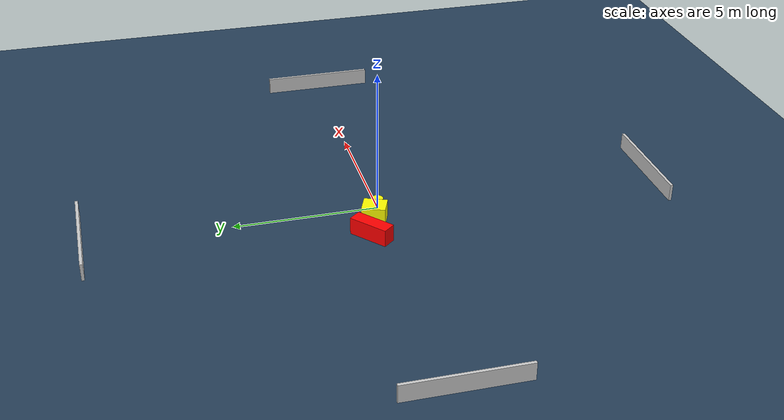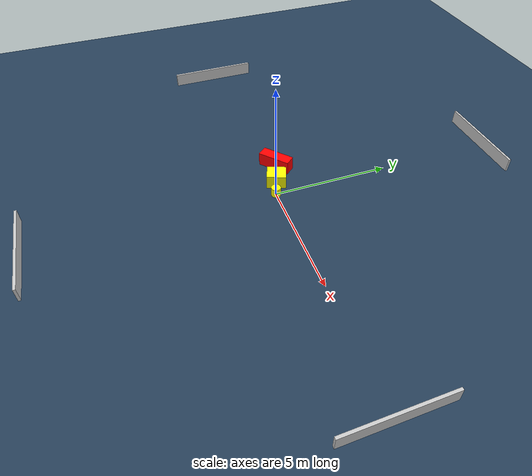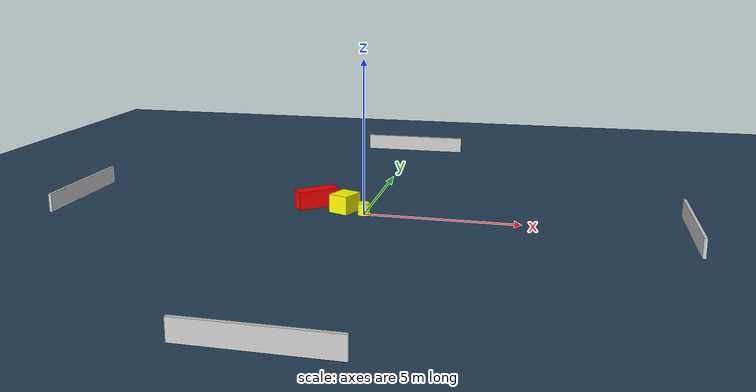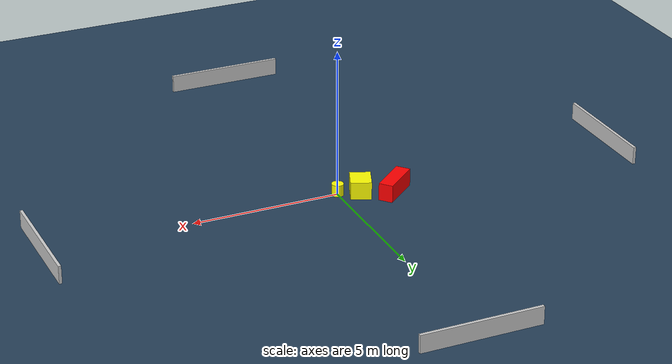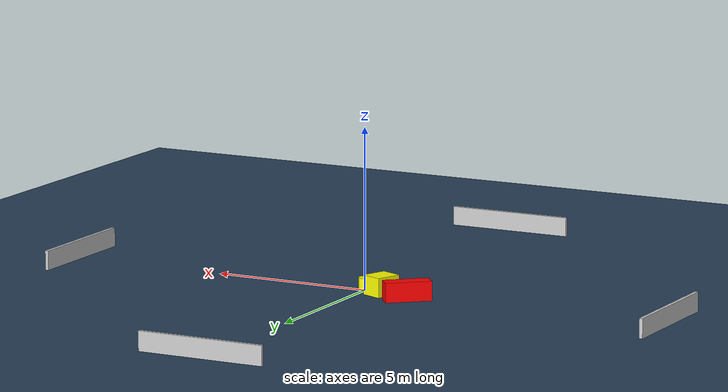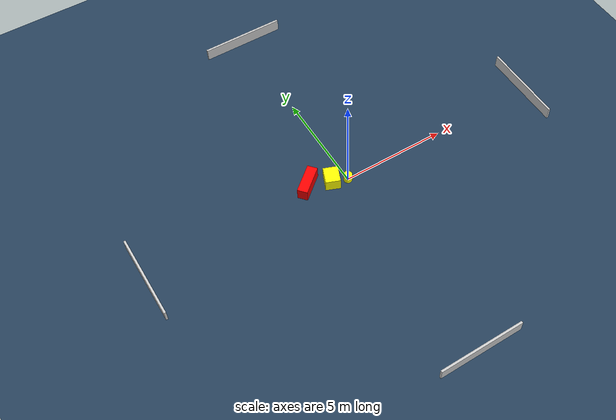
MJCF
<?xml version="1.0" ?>
<mujoco model="generated_environment">
  <option timestep="0.01" integrator="RK4" cone="elliptic"/>
  <default>
    <geom density="1"/>
  </default>
  <asset>
    <texture builtin="gradient" height="3072" name="skybox" rgb1="0.3 0.5 0.7" rgb2="0 0 0" type="skybox" width="512"/>
    <texture builtin="checker" height="300" name="groundplane" rgb1="0.2 0.3 0.4" rgb2="0.1 0.2 0.3" type="2d" width="300"/>
    <material name="groundplane" reflectance="0.2" texrepeat="5 5" texture="groundplane"/>
  </asset>
  <worldbody>
    <light dir="0 0 -1" directional="true" pos="0 0 1.5"/>
    <geom condim="3" friction="0.5 0.005 0.001" material="groundplane" name="floor" pos="0 0 0" size="0 0 0.05" type="plane"/>
    <body name="walls">
      <geom name="wall_1" condim="4" pos="-10.0 0.0 0.3" rgba="0.800000011920929 0.800000011920929 0.800000011920929 1.0" size="0.05 2.0 0.3" type="box"/>
      <geom name="wall_2" condim="4" pos="10.0 0.0 0.3" rgba="0.800000011920929 0.800000011920929 0.800000011920929 1.0" size="0.05 2.0 0.3" type="box"/>
      <geom name="wall_3" condim="4" pos="0.0 -10.0 0.3" rgba="0.800000011920929 0.800000011920929 0.800000011920929 1.0" size="2.0 0.05 0.3" type="box"/>
      <geom name="wall_4" condim="4" pos="0.0 10.0 0.3" rgba="0.800000011920929 0.800000011920929 0.800000011920929 1.0" size="2.0 0.05 0.3" type="box"/>
    </body>
    <body name="robot">
      <joint name="joint_x" type="slide" pos="0 0 0" axis="1 0 0"/>
      <joint name="joint_y" type="slide" pos="0 0 0" axis="0 1 0"/>
      <geom name="robot" type="cylinder" pos="0.0 0.0 0.2" size="0.2 0.2 0.0" mass="5.0" friction="1.0 0.005 0.0001" condim="4" rgba="1.0 1.0 0.0 1.0"/>
    </body>
    <body name="obstacle_1_movable">
      <geom name="obstacle_1_movable" condim="4" pos="-0.6930644045921254 0.2720984388048499 0.3" euler="0 0 68.17677650634641" friction="0.0 0.005 0.001" rgba="1.0 1.0 0.0 1.0" size="0.4054607094766236 0.34607701271663815 0.3" type="box" mass="0.1"/>
      <joint type="free"/>
    </body>
    <body name="obstacle_2_static">
      <geom name="obstacle_2_static" condim="4" pos="-1.747007354091434 0.6307098538581872 0.3" euler="0 0 130.3322368146857" friction="0.0 0.005 0.001" rgba="1.0 0.0 0.0 1.0" size="0.2411197053967155 0.706831047495986 0.3" type="box"/>
    </body>
  </worldbody>
  <actuator>
    <motor name="actuator_x" joint="joint_x" gear="1" ctrlrange="-1 1"/>
    <motor name="actuator_y" joint="joint_y" gear="1" ctrlrange="-1 1"/>
  </actuator>
</mujoco>
